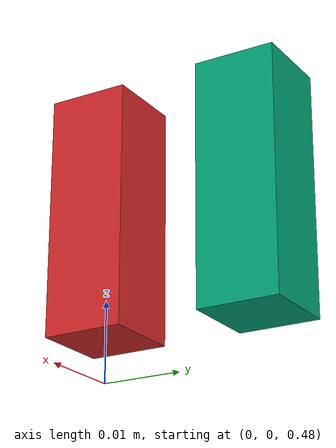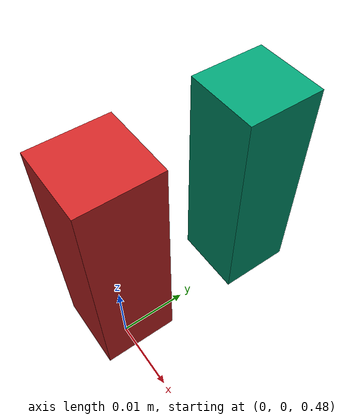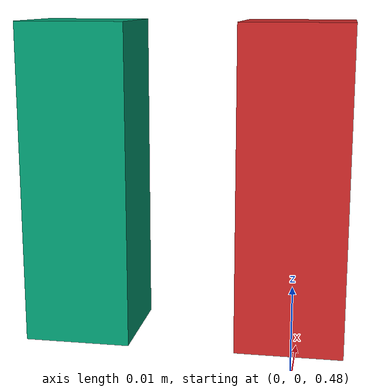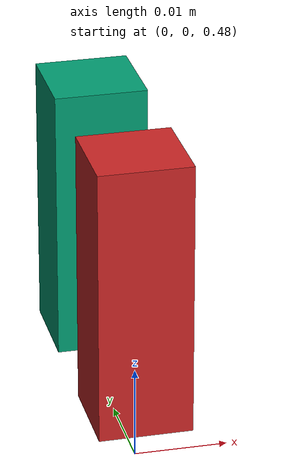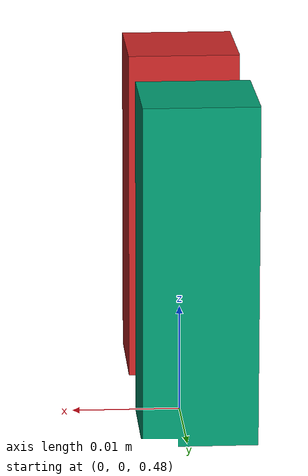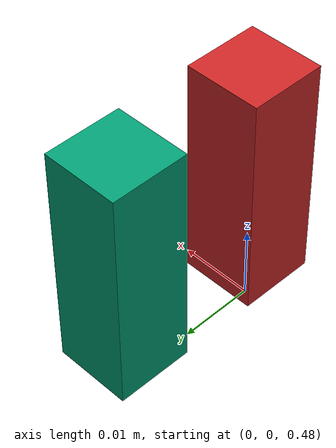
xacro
<?xml version="1.0" ?>

<robot name="stereo_cam" xmlns:xacro="http://www.ros.org/wiki/xacro">
  <xacro:property name="GazeboRed"       value="1 0 0 1"/>
  <link name="world">
      <origin xyz="0.0 0.0 0.0"/>
  </link>

  <joint name="left_camera_joint" type="fixed">
      <parent link="world"/>
      <child link="left_camera_body"/>
      <origin rpy="0.0 1.5708 1.5708" xyz="0 0.0 0.5"/>
  </joint>

  <link name="left_camera_body">
    <visual>
      <origin xyz="0 0 0.0" rpy="0 0 0"/>
      <geometry>
        <box size="0.03 0.01 0.01"/>
      </geometry>

    </visual>

    <inertial>
      <mass value="1e-5" />
      <origin xyz="0 0 0" rpy="0 0 0"/>
      <inertia ixx="1e-6" ixy="0" ixz="0" iyy="1e-6" iyz="0" izz="1e-6" />
    </inertial>

  </link>
  <gazebo reference="left_camera_body">
    <material>Gazebo/Red</material>
  </gazebo>

  <link name="right_camera_body">
    <visual>
      <origin xyz="0 0 0.0" rpy="0 0 0"/>
      <geometry>
        <box size="0.01 0.01 0.03"/>
      </geometry>
    </visual>

    <inertial>
      <mass value="1e-5" />
      <origin xyz="0 0 0" rpy="0 0 0"/>
      <inertia ixx="1e-6" ixy="0" ixz="0" iyy="1e-6" iyz="0" izz="1e-6" />
    </inertial>
  </link>

  <link name="left_camera_optical_frame">
  </link>
  <link name="left_camera_optical_frame_mid">
  </link>
    <link name="left_camera_ref_frame">
  </link>

  <joint name="left_camera_ref_joint" type="fixed">
      <parent link="left_camera_body"/>
      <child link="left_camera_ref_frame"/>
      <origin rpy="-1.5708 0 0" xyz="0 0 0"/>
  </joint>
  <joint name="left_camera_optical_joint" type="fixed">
      <parent link="left_camera_optical_frame_mid"/>
      <child link="left_camera_optical_frame"/>
      <origin rpy="0 1.5708 0" xyz="0 0 0"/>
  </joint>
  <joint name="left_camera_optical_joint_mid" type="fixed">
      <parent link="left_camera_body"/>
      <child link="left_camera_optical_frame_mid"/>
      <origin rpy="3.1415926 0 0" xyz="0 0 0"/>
  </joint>

  <joint name="right_camera_joint" type="fixed">
      <parent link="left_camera_optical_frame"/>
      <child link="right_camera_body"/>
      <origin rpy="0.0 0 0" xyz="0.02 0 0"/>
      <!--origin rpy="0.0 1.5708 1.5708" xyz="0 0.02 0.5"/-->
  </joint>

<!-- start of stereo camera plug-in -->
  <gazebo reference="left_camera_ref_frame">
  <!--gazebo reference="left_camera_optical_frame"-->
    <sensor type="multicamera" name="stereo_camera">
      <update_rate>30.0</update_rate>
      <camera name="left">
        <horizontal_fov>0.6</horizontal_fov>
        <image>
          <width>640</width>
          <height>480</height>
          <format>R8G8B8</format>
        </image>
         <clip>
          <near>0.005</near>
          <far>0.9</far>
        </clip>
        <noise>
          <type>gaussian</type>
          <mean>0.0</mean>
          <stddev>0.0</stddev>
        </noise>
      </camera>
      <camera name="right">
        <pose>0 -0.02  0 0 0 0</pose>
        <horizontal_fov>0.6</horizontal_fov>
        <image>
          <width>640</width>
          <height>480</height>
          <format>R8G8B8</format>
        </image>
        <clip>
          <near>0.005</near>
          <far>0.9</far>
        </clip>
        <noise>
          <type>gaussian</type>
          <mean>0.0</mean>
          <stddev>0.0</stddev>
        </noise>
      </camera>
      <plugin name="stereo_camera_controller" filename="libgazebo_ros_multicamera.so">
        <alwaysOn>true</alwaysOn>
        <updateRate>0.0</updateRate>
        <cameraName>stereo_camera</cameraName>
        <imageTopicName>image_raw</imageTopicName>
        <cameraInfoTopicName>camera_info</cameraInfoTopicName>
        <frameName>left_camera_optical_frame</frameName>
        <hackBaseline>0.02</hackBaseline>
        <distortionK1>0.0</distortionK1>
        <distortionK2>0.0</distortionK2>
        <distortionK3>0.0</distortionK3>
        <distortionT1>0.0</distortionT1>
        <distortionT2>0.0</distortionT2>
      </plugin>
    </sensor>
  </gazebo>
  <!--  end of stereo plug-in -->
</robot>
